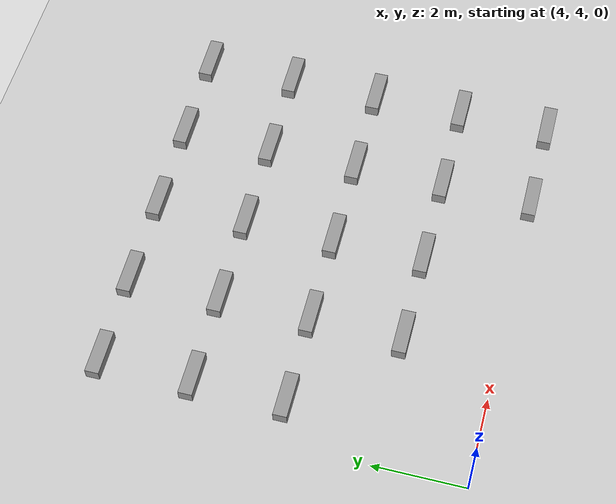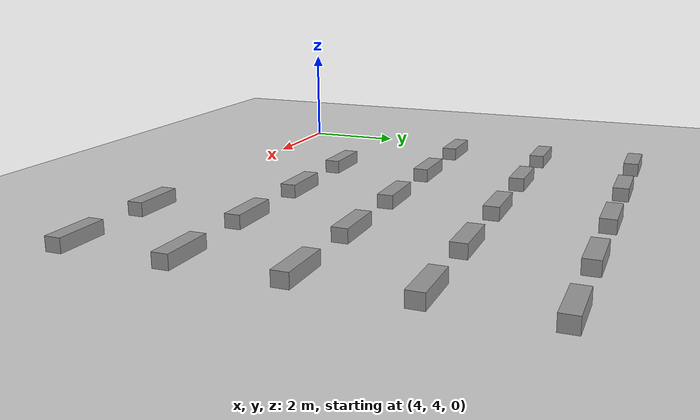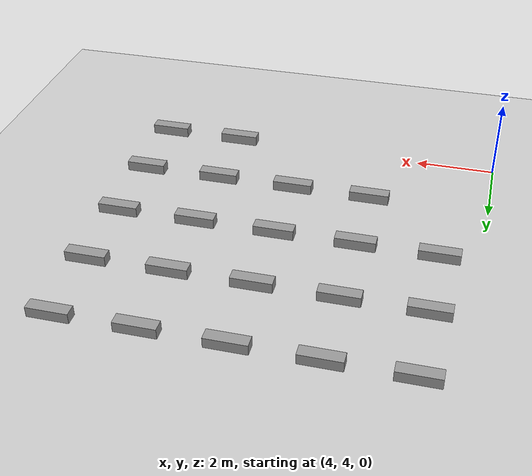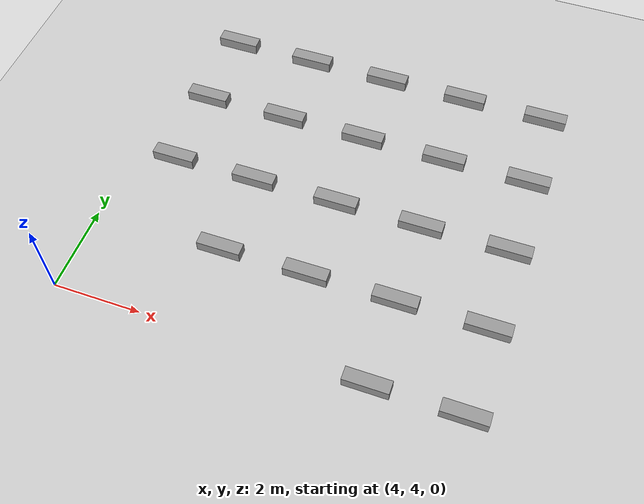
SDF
<sdf version="1.6">
 <world name="default">
  <model name="ground_plane">
   <static>1</static>
   <link name="link">
    <collision name="collision">
     <geometry><plane><normal>0 0 1</normal><size>100 100</size></plane></geometry>
     <surface><friction><ode><mu>100</mu><mu2>50</mu2></ode></friction></surface>
    </collision>
    <visual name="visual">
     <cast_shadows>0</cast_shadows>
     <geometry><plane><normal>0 0 1</normal><size>100 100</size></plane></geometry>
     <material>
      <script><uri>file://media/materials/scripts/gazebo.material</uri><name>Gazebo/Grey</name></script>
     </material>
    </visual>
   </link>
  </model>
  <model name="ss1_0_clone_clone_23">
   <link name="link_0">
    <inertial>
     <mass>1</mass>
     <inertia>
      <ixx>0.166667</ixx>
      <ixy>0</ixy>
      <ixz>0</ixz>
      <iyy>0.166667</iyy>
      <iyz>0</iyz>
      <izz>0.166667</izz>
     </inertia>
    </inertial>
    <visual name="visual">
     <geometry><box><size>0.3 1 0.5</size></box></geometry>
     <material>
      <lighting>1</lighting>
      <script><uri>file://media/materials/scripts/gazebo.material</uri><name>Gazebo/Grey</name></script>
      <ambient>0.3 0.3 0.3 1</ambient>
      <diffuse>0.7 0.7 0.7 1</diffuse>
      <specular>0.01 0.01 0.01 1</specular>
      <emissive>0 0 0 1</emissive>
      <shader type="vertex"><normal_map>__default__</normal_map></shader>
     </material>
    </visual>
    <collision name="collision">
     <geometry><box><size>0.3 1 0.5</size></box></geometry>
     <surface>
      <friction>
       <ode><mu>1</mu><mu2>1</mu2><fdir1>0 0 0</fdir1><slip1>0</slip1><slip2>0</slip2></ode>
       <torsional>
        <coefficient>1</coefficient>
        <patch_radius>0</patch_radius>
        <surface_radius>0</surface_radius>
        <use_patch_radius>1</use_patch_radius>
        <ode><slip>0</slip></ode>
       </torsional>
      </friction>
      <bounce><restitution_coefficient>0</restitution_coefficient><threshold>1e+06</threshold></bounce>
      <contact>
       <collide_without_contact>0</collide_without_contact>
       <collide_without_contact_bitmask>1</collide_without_contact_bitmask>
       <collide_bitmask>1</collide_bitmask>
       <ode>
        <soft_cfm>0</soft_cfm>
        <soft_erp>0.2</soft_erp>
        <kp>1e+13</kp>
        <kd>1</kd>
        <max_vel>0.01</max_vel>
        <min_depth>0</min_depth>
       </ode>
       <bullet>
        <split_impulse>1</split_impulse>
        <split_impulse_penetration_threshold>-0.01</split_impulse_penetration_threshold>
        <soft_cfm>0</soft_cfm>
        <soft_erp>0.2</soft_erp>
        <kp>1e+13</kp>
        <kd>1</kd>
       </bullet>
      </contact>
     </surface>
    </collision>
   </link>
   <static>0</static>
   <pose>5 8 0 0 -0 1.5708</pose>
  </model>
  <model name="ss1_0_clone_clone_24">
   <link name="link_0">
    <inertial>
     <mass>1</mass>
     <inertia>
      <ixx>0.166667</ixx>
      <ixy>0</ixy>
      <ixz>0</ixz>
      <iyy>0.166667</iyy>
      <iyz>0</iyz>
      <izz>0.166667</izz>
     </inertia>
    </inertial>
    <visual name="visual">
     <geometry><box><size>0.3 1 0.5</size></box></geometry>
     <material>
      <lighting>1</lighting>
      <script><uri>file://media/materials/scripts/gazebo.material</uri><name>Gazebo/Grey</name></script>
      <ambient>0.3 0.3 0.3 1</ambient>
      <diffuse>0.7 0.7 0.7 1</diffuse>
      <specular>0.01 0.01 0.01 1</specular>
      <emissive>0 0 0 1</emissive>
      <shader type="vertex"><normal_map>__default__</normal_map></shader>
     </material>
    </visual>
    <collision name="collision">
     <geometry><box><size>0.3 1 0.5</size></box></geometry>
     <surface>
      <friction>
       <ode><mu>1</mu><mu2>1</mu2><fdir1>0 0 0</fdir1><slip1>0</slip1><slip2>0</slip2></ode>
       <torsional>
        <coefficient>1</coefficient>
        <patch_radius>0</patch_radius>
        <surface_radius>0</surface_radius>
        <use_patch_radius>1</use_patch_radius>
        <ode><slip>0</slip></ode>
       </torsional>
      </friction>
      <bounce><restitution_coefficient>0</restitution_coefficient><threshold>1e+06</threshold></bounce>
      <contact>
       <collide_without_contact>0</collide_without_contact>
       <collide_without_contact_bitmask>1</collide_without_contact_bitmask>
       <collide_bitmask>1</collide_bitmask>
       <ode>
        <soft_cfm>0</soft_cfm>
        <soft_erp>0.2</soft_erp>
        <kp>1e+13</kp>
        <kd>1</kd>
        <max_vel>0.01</max_vel>
        <min_depth>0</min_depth>
       </ode>
       <bullet>
        <split_impulse>1</split_impulse>
        <split_impulse_penetration_threshold>-0.01</split_impulse_penetration_threshold>
        <soft_cfm>0</soft_cfm>
        <soft_erp>0.2</soft_erp>
        <kp>1e+13</kp>
        <kd>1</kd>
       </bullet>
      </contact>
     </surface>
    </collision>
   </link>
   <static>0</static>
   <pose>5 10 0 0 -0 1.5708</pose>
  </model>
  <model name="ss1_0_clone_clone_25">
   <link name="link_0">
    <inertial>
     <mass>1</mass>
     <inertia>
      <ixx>0.166667</ixx>
      <ixy>0</ixy>
      <ixz>0</ixz>
      <iyy>0.166667</iyy>
      <iyz>0</iyz>
      <izz>0.166667</izz>
     </inertia>
    </inertial>
    <visual name="visual">
     <geometry><box><size>0.3 1 0.5</size></box></geometry>
     <material>
      <lighting>1</lighting>
      <script><uri>file://media/materials/scripts/gazebo.material</uri><name>Gazebo/Grey</name></script>
      <ambient>0.3 0.3 0.3 1</ambient>
      <diffuse>0.7 0.7 0.7 1</diffuse>
      <specular>0.01 0.01 0.01 1</specular>
      <emissive>0 0 0 1</emissive>
      <shader type="vertex"><normal_map>__default__</normal_map></shader>
     </material>
    </visual>
    <collision name="collision">
     <geometry><box><size>0.3 1 0.5</size></box></geometry>
     <surface>
      <friction>
       <ode><mu>1</mu><mu2>1</mu2><fdir1>0 0 0</fdir1><slip1>0</slip1><slip2>0</slip2></ode>
       <torsional>
        <coefficient>1</coefficient>
        <patch_radius>0</patch_radius>
        <surface_radius>0</surface_radius>
        <use_patch_radius>1</use_patch_radius>
        <ode><slip>0</slip></ode>
       </torsional>
      </friction>
      <bounce><restitution_coefficient>0</restitution_coefficient><threshold>1e+06</threshold></bounce>
      <contact>
       <collide_without_contact>0</collide_without_contact>
       <collide_without_contact_bitmask>1</collide_without_contact_bitmask>
       <collide_bitmask>1</collide_bitmask>
       <ode>
        <soft_cfm>0</soft_cfm>
        <soft_erp>0.2</soft_erp>
        <kp>1e+13</kp>
        <kd>1</kd>
        <max_vel>0.01</max_vel>
        <min_depth>0</min_depth>
       </ode>
       <bullet>
        <split_impulse>1</split_impulse>
        <split_impulse_penetration_threshold>-0.01</split_impulse_penetration_threshold>
        <soft_cfm>0</soft_cfm>
        <soft_erp>0.2</soft_erp>
        <kp>1e+13</kp>
        <kd>1</kd>
       </bullet>
      </contact>
     </surface>
    </collision>
   </link>
   <static>0</static>
   <pose>5 12 0 0 -0 1.5708</pose>
  </model>
  <model name="ss1_0_clone_clone_35">
   <link name="link_0">
    <inertial>
     <mass>1</mass>
     <inertia>
      <ixx>0.166667</ixx>
      <ixy>0</ixy>
      <ixz>0</ixz>
      <iyy>0.166667</iyy>
      <iyz>0</iyz>
      <izz>0.166667</izz>
     </inertia>
    </inertial>
    <visual name="visual">
     <geometry><box><size>0.3 1 0.5</size></box></geometry>
     <material>
      <lighting>1</lighting>
      <script><uri>file://media/materials/scripts/gazebo.material</uri><name>Gazebo/Grey</name></script>
      <ambient>0.3 0.3 0.3 1</ambient>
      <diffuse>0.7 0.7 0.7 1</diffuse>
      <specular>0.01 0.01 0.01 1</specular>
      <emissive>0 0 0 1</emissive>
      <shader type="vertex"><normal_map>__default__</normal_map></shader>
     </material>
    </visual>
    <collision name="collision">
     <geometry><box><size>0.3 1 0.5</size></box></geometry>
     <surface>
      <friction>
       <ode><mu>1</mu><mu2>1</mu2><fdir1>0 0 0</fdir1><slip1>0</slip1><slip2>0</slip2></ode>
       <torsional>
        <coefficient>1</coefficient>
        <patch_radius>0</patch_radius>
        <surface_radius>0</surface_radius>
        <use_patch_radius>1</use_patch_radius>
        <ode><slip>0</slip></ode>
       </torsional>
      </friction>
      <bounce><restitution_coefficient>0</restitution_coefficient><threshold>1e+06</threshold></bounce>
      <contact>
       <collide_without_contact>0</collide_without_contact>
       <collide_without_contact_bitmask>1</collide_without_contact_bitmask>
       <collide_bitmask>1</collide_bitmask>
       <ode>
        <soft_cfm>0</soft_cfm>
        <soft_erp>0.2</soft_erp>
        <kp>1e+13</kp>
        <kd>1</kd>
        <max_vel>0.01</max_vel>
        <min_depth>0</min_depth>
       </ode>
       <bullet>
        <split_impulse>1</split_impulse>
        <split_impulse_penetration_threshold>-0.01</split_impulse_penetration_threshold>
        <soft_cfm>0</soft_cfm>
        <soft_erp>0.2</soft_erp>
        <kp>1e+13</kp>
        <kd>1</kd>
       </bullet>
      </contact>
     </surface>
    </collision>
   </link>
   <static>0</static>
   <pose>11 4 0 0 -0 1.5708</pose>
  </model>
  <model name="ss1_0_clone_clone_36">
   <link name="link_0">
    <inertial>
     <mass>1</mass>
     <inertia>
      <ixx>0.166667</ixx>
      <ixy>0</ixy>
      <ixz>0</ixz>
      <iyy>0.166667</iyy>
      <iyz>0</iyz>
      <izz>0.166667</izz>
     </inertia>
    </inertial>
    <visual name="visual">
     <geometry><box><size>0.3 1 0.5</size></box></geometry>
     <material>
      <lighting>1</lighting>
      <script><uri>file://media/materials/scripts/gazebo.material</uri><name>Gazebo/Grey</name></script>
      <ambient>0.3 0.3 0.3 1</ambient>
      <diffuse>0.7 0.7 0.7 1</diffuse>
      <specular>0.01 0.01 0.01 1</specular>
      <emissive>0 0 0 1</emissive>
      <shader type="vertex"><normal_map>__default__</normal_map></shader>
     </material>
    </visual>
    <collision name="collision">
     <geometry><box><size>0.3 1 0.5</size></box></geometry>
     <surface>
      <friction>
       <ode><mu>1</mu><mu2>1</mu2><fdir1>0 0 0</fdir1><slip1>0</slip1><slip2>0</slip2></ode>
       <torsional>
        <coefficient>1</coefficient>
        <patch_radius>0</patch_radius>
        <surface_radius>0</surface_radius>
        <use_patch_radius>1</use_patch_radius>
        <ode><slip>0</slip></ode>
       </torsional>
      </friction>
      <bounce><restitution_coefficient>0</restitution_coefficient><threshold>1e+06</threshold></bounce>
      <contact>
       <collide_without_contact>0</collide_without_contact>
       <collide_without_contact_bitmask>1</collide_without_contact_bitmask>
       <collide_bitmask>1</collide_bitmask>
       <ode>
        <soft_cfm>0</soft_cfm>
        <soft_erp>0.2</soft_erp>
        <kp>1e+13</kp>
        <kd>1</kd>
        <max_vel>0.01</max_vel>
        <min_depth>0</min_depth>
       </ode>
       <bullet>
        <split_impulse>1</split_impulse>
        <split_impulse_penetration_threshold>-0.01</split_impulse_penetration_threshold>
        <soft_cfm>0</soft_cfm>
        <soft_erp>0.2</soft_erp>
        <kp>1e+13</kp>
        <kd>1</kd>
       </bullet>
      </contact>
     </surface>
    </collision>
   </link>
   <static>0</static>
   <pose>13 4 0 0 -0 1.5708</pose>
  </model>
  <model name="ss1_0_clone_clone_37">
   <link name="link_0">
    <inertial>
     <mass>1</mass>
     <inertia>
      <ixx>0.166667</ixx>
      <ixy>0</ixy>
      <ixz>0</ixz>
      <iyy>0.166667</iyy>
      <iyz>0</iyz>
      <izz>0.166667</izz>
     </inertia>
    </inertial>
    <visual name="visual">
     <geometry><box><size>0.3 1 0.5</size></box></geometry>
     <material>
      <lighting>1</lighting>
      <script><uri>file://media/materials/scripts/gazebo.material</uri><name>Gazebo/Grey</name></script>
      <ambient>0.3 0.3 0.3 1</ambient>
      <diffuse>0.7 0.7 0.7 1</diffuse>
      <specular>0.01 0.01 0.01 1</specular>
      <emissive>0 0 0 1</emissive>
      <shader type="vertex"><normal_map>__default__</normal_map></shader>
     </material>
    </visual>
    <collision name="collision">
     <geometry><box><size>0.3 1 0.5</size></box></geometry>
     <surface>
      <friction>
       <ode><mu>1</mu><mu2>1</mu2><fdir1>0 0 0</fdir1><slip1>0</slip1><slip2>0</slip2></ode>
       <torsional>
        <coefficient>1</coefficient>
        <patch_radius>0</patch_radius>
        <surface_radius>0</surface_radius>
        <use_patch_radius>1</use_patch_radius>
        <ode><slip>0</slip></ode>
       </torsional>
      </friction>
      <bounce><restitution_coefficient>0</restitution_coefficient><threshold>1e+06</threshold></bounce>
      <contact>
       <collide_without_contact>0</collide_without_contact>
       <collide_without_contact_bitmask>1</collide_without_contact_bitmask>
       <collide_bitmask>1</collide_bitmask>
       <ode>
        <soft_cfm>0</soft_cfm>
        <soft_erp>0.2</soft_erp>
        <kp>1e+13</kp>
        <kd>1</kd>
        <max_vel>0.01</max_vel>
        <min_depth>0</min_depth>
       </ode>
       <bullet>
        <split_impulse>1</split_impulse>
        <split_impulse_penetration_threshold>-0.01</split_impulse_penetration_threshold>
        <soft_cfm>0</soft_cfm>
        <soft_erp>0.2</soft_erp>
        <kp>1e+13</kp>
        <kd>1</kd>
       </bullet>
      </contact>
     </surface>
    </collision>
   </link>
   <static>0</static>
   <pose>7 6 0 0 -0 1.5708</pose>
  </model>
  <model name="ss1_0_clone_clone_38">
   <link name="link_0">
    <inertial>
     <mass>1</mass>
     <inertia>
      <ixx>0.166667</ixx>
      <ixy>0</ixy>
      <ixz>0</ixz>
      <iyy>0.166667</iyy>
      <iyz>0</iyz>
      <izz>0.166667</izz>
     </inertia>
    </inertial>
    <visual name="visual">
     <geometry><box><size>0.3 1 0.5</size></box></geometry>
     <material>
      <lighting>1</lighting>
      <script><uri>file://media/materials/scripts/gazebo.material</uri><name>Gazebo/Grey</name></script>
      <ambient>0.3 0.3 0.3 1</ambient>
      <diffuse>0.7 0.7 0.7 1</diffuse>
      <specular>0.01 0.01 0.01 1</specular>
      <emissive>0 0 0 1</emissive>
      <shader type="vertex"><normal_map>__default__</normal_map></shader>
     </material>
    </visual>
    <collision name="collision">
     <geometry><box><size>0.3 1 0.5</size></box></geometry>
     <surface>
      <friction>
       <ode><mu>1</mu><mu2>1</mu2><fdir1>0 0 0</fdir1><slip1>0</slip1><slip2>0</slip2></ode>
       <torsional>
        <coefficient>1</coefficient>
        <patch_radius>0</patch_radius>
        <surface_radius>0</surface_radius>
        <use_patch_radius>1</use_patch_radius>
        <ode><slip>0</slip></ode>
       </torsional>
      </friction>
      <bounce><restitution_coefficient>0</restitution_coefficient><threshold>1e+06</threshold></bounce>
      <contact>
       <collide_without_contact>0</collide_without_contact>
       <collide_without_contact_bitmask>1</collide_without_contact_bitmask>
       <collide_bitmask>1</collide_bitmask>
       <ode>
        <soft_cfm>0</soft_cfm>
        <soft_erp>0.2</soft_erp>
        <kp>1e+13</kp>
        <kd>1</kd>
        <max_vel>0.01</max_vel>
        <min_depth>0</min_depth>
       </ode>
       <bullet>
        <split_impulse>1</split_impulse>
        <split_impulse_penetration_threshold>-0.01</split_impulse_penetration_threshold>
        <soft_cfm>0</soft_cfm>
        <soft_erp>0.2</soft_erp>
        <kp>1e+13</kp>
        <kd>1</kd>
       </bullet>
      </contact>
     </surface>
    </collision>
   </link>
   <static>0</static>
   <pose>9 6 0 0 -0 1.5708</pose>
  </model>
  <model name="ss1_0_clone_clone_39">
   <link name="link_0">
    <inertial>
     <mass>1</mass>
     <inertia>
      <ixx>0.166667</ixx>
      <ixy>0</ixy>
      <ixz>0</ixz>
      <iyy>0.166667</iyy>
      <iyz>0</iyz>
      <izz>0.166667</izz>
     </inertia>
    </inertial>
    <visual name="visual">
     <geometry><box><size>0.3 1 0.5</size></box></geometry>
     <material>
      <lighting>1</lighting>
      <script><uri>file://media/materials/scripts/gazebo.material</uri><name>Gazebo/Grey</name></script>
      <ambient>0.3 0.3 0.3 1</ambient>
      <diffuse>0.7 0.7 0.7 1</diffuse>
      <specular>0.01 0.01 0.01 1</specular>
      <emissive>0 0 0 1</emissive>
      <shader type="vertex"><normal_map>__default__</normal_map></shader>
     </material>
    </visual>
    <collision name="collision">
     <geometry><box><size>0.3 1 0.5</size></box></geometry>
     <surface>
      <friction>
       <ode><mu>1</mu><mu2>1</mu2><fdir1>0 0 0</fdir1><slip1>0</slip1><slip2>0</slip2></ode>
       <torsional>
        <coefficient>1</coefficient>
        <patch_radius>0</patch_radius>
        <surface_radius>0</surface_radius>
        <use_patch_radius>1</use_patch_radius>
        <ode><slip>0</slip></ode>
       </torsional>
      </friction>
      <bounce><restitution_coefficient>0</restitution_coefficient><threshold>1e+06</threshold></bounce>
      <contact>
       <collide_without_contact>0</collide_without_contact>
       <collide_without_contact_bitmask>1</collide_without_contact_bitmask>
       <collide_bitmask>1</collide_bitmask>
       <ode>
        <soft_cfm>0</soft_cfm>
        <soft_erp>0.2</soft_erp>
        <kp>1e+13</kp>
        <kd>1</kd>
        <max_vel>0.01</max_vel>
        <min_depth>0</min_depth>
       </ode>
       <bullet>
        <split_impulse>1</split_impulse>
        <split_impulse_penetration_threshold>-0.01</split_impulse_penetration_threshold>
        <soft_cfm>0</soft_cfm>
        <soft_erp>0.2</soft_erp>
        <kp>1e+13</kp>
        <kd>1</kd>
       </bullet>
      </contact>
     </surface>
    </collision>
   </link>
   <static>0</static>
   <pose>7 8 0 0 -0 1.5708</pose>
  </model>
  <model name="ss1_0_clone_clone_40">
   <link name="link_0">
    <inertial>
     <mass>1</mass>
     <inertia>
      <ixx>0.166667</ixx>
      <ixy>0</ixy>
      <ixz>0</ixz>
      <iyy>0.166667</iyy>
      <iyz>0</iyz>
      <izz>0.166667</izz>
     </inertia>
    </inertial>
    <visual name="visual">
     <geometry><box><size>0.3 1 0.5</size></box></geometry>
     <material>
      <lighting>1</lighting>
      <script><uri>file://media/materials/scripts/gazebo.material</uri><name>Gazebo/Grey</name></script>
      <ambient>0.3 0.3 0.3 1</ambient>
      <diffuse>0.7 0.7 0.7 1</diffuse>
      <specular>0.01 0.01 0.01 1</specular>
      <emissive>0 0 0 1</emissive>
      <shader type="vertex"><normal_map>__default__</normal_map></shader>
     </material>
    </visual>
    <collision name="collision">
     <geometry><box><size>0.3 1 0.5</size></box></geometry>
     <surface>
      <friction>
       <ode><mu>1</mu><mu2>1</mu2><fdir1>0 0 0</fdir1><slip1>0</slip1><slip2>0</slip2></ode>
       <torsional>
        <coefficient>1</coefficient>
        <patch_radius>0</patch_radius>
        <surface_radius>0</surface_radius>
        <use_patch_radius>1</use_patch_radius>
        <ode><slip>0</slip></ode>
       </torsional>
      </friction>
      <bounce><restitution_coefficient>0</restitution_coefficient><threshold>1e+06</threshold></bounce>
      <contact>
       <collide_without_contact>0</collide_without_contact>
       <collide_without_contact_bitmask>1</collide_without_contact_bitmask>
       <collide_bitmask>1</collide_bitmask>
       <ode>
        <soft_cfm>0</soft_cfm>
        <soft_erp>0.2</soft_erp>
        <kp>1e+13</kp>
        <kd>1</kd>
        <max_vel>0.01</max_vel>
        <min_depth>0</min_depth>
       </ode>
       <bullet>
        <split_impulse>1</split_impulse>
        <split_impulse_penetration_threshold>-0.01</split_impulse_penetration_threshold>
        <soft_cfm>0</soft_cfm>
        <soft_erp>0.2</soft_erp>
        <kp>1e+13</kp>
        <kd>1</kd>
       </bullet>
      </contact>
     </surface>
    </collision>
   </link>
   <static>0</static>
   <pose>7 10 0 0 -0 1.5708</pose>
  </model>
  <model name="ss1_0_clone_clone_41">
   <link name="link_0">
    <inertial>
     <mass>1</mass>
     <inertia>
      <ixx>0.166667</ixx>
      <ixy>0</ixy>
      <ixz>0</ixz>
      <iyy>0.166667</iyy>
      <iyz>0</iyz>
      <izz>0.166667</izz>
     </inertia>
    </inertial>
    <visual name="visual">
     <geometry><box><size>0.3 1 0.5</size></box></geometry>
     <material>
      <lighting>1</lighting>
      <script><uri>file://media/materials/scripts/gazebo.material</uri><name>Gazebo/Grey</name></script>
      <ambient>0.3 0.3 0.3 1</ambient>
      <diffuse>0.7 0.7 0.7 1</diffuse>
      <specular>0.01 0.01 0.01 1</specular>
      <emissive>0 0 0 1</emissive>
      <shader type="vertex"><normal_map>__default__</normal_map></shader>
     </material>
    </visual>
    <collision name="collision">
     <geometry><box><size>0.3 1 0.5</size></box></geometry>
     <surface>
      <friction>
       <ode><mu>1</mu><mu2>1</mu2><fdir1>0 0 0</fdir1><slip1>0</slip1><slip2>0</slip2></ode>
       <torsional>
        <coefficient>1</coefficient>
        <patch_radius>0</patch_radius>
        <surface_radius>0</surface_radius>
        <use_patch_radius>1</use_patch_radius>
        <ode><slip>0</slip></ode>
       </torsional>
      </friction>
      <bounce><restitution_coefficient>0</restitution_coefficient><threshold>1e+06</threshold></bounce>
      <contact>
       <collide_without_contact>0</collide_without_contact>
       <collide_without_contact_bitmask>1</collide_without_contact_bitmask>
       <collide_bitmask>1</collide_bitmask>
       <ode>
        <soft_cfm>0</soft_cfm>
        <soft_erp>0.2</soft_erp>
        <kp>1e+13</kp>
        <kd>1</kd>
        <max_vel>0.01</max_vel>
        <min_depth>0</min_depth>
       </ode>
       <bullet>
        <split_impulse>1</split_impulse>
        <split_impulse_penetration_threshold>-0.01</split_impulse_penetration_threshold>
        <soft_cfm>0</soft_cfm>
        <soft_erp>0.2</soft_erp>
        <kp>1e+13</kp>
        <kd>1</kd>
       </bullet>
      </contact>
     </surface>
    </collision>
   </link>
   <static>0</static>
   <pose>7 12 0 0 -0 1.5708</pose>
  </model>
  <model name="ss1_0_clone_clone_42">
   <link name="link_0">
    <inertial>
     <mass>1</mass>
     <inertia>
      <ixx>0.166667</ixx>
      <ixy>0</ixy>
      <ixz>0</ixz>
      <iyy>0.166667</iyy>
      <iyz>0</iyz>
      <izz>0.166667</izz>
     </inertia>
    </inertial>
    <visual name="visual">
     <geometry><box><size>0.3 1 0.5</size></box></geometry>
     <material>
      <lighting>1</lighting>
      <script><uri>file://media/materials/scripts/gazebo.material</uri><name>Gazebo/Grey</name></script>
      <ambient>0.3 0.3 0.3 1</ambient>
      <diffuse>0.7 0.7 0.7 1</diffuse>
      <specular>0.01 0.01 0.01 1</specular>
      <emissive>0 0 0 1</emissive>
      <shader type="vertex"><normal_map>__default__</normal_map></shader>
     </material>
    </visual>
    <collision name="collision">
     <geometry><box><size>0.3 1 0.5</size></box></geometry>
     <surface>
      <friction>
       <ode><mu>1</mu><mu2>1</mu2><fdir1>0 0 0</fdir1><slip1>0</slip1><slip2>0</slip2></ode>
       <torsional>
        <coefficient>1</coefficient>
        <patch_radius>0</patch_radius>
        <surface_radius>0</surface_radius>
        <use_patch_radius>1</use_patch_radius>
        <ode><slip>0</slip></ode>
       </torsional>
      </friction>
      <bounce><restitution_coefficient>0</restitution_coefficient><threshold>1e+06</threshold></bounce>
      <contact>
       <collide_without_contact>0</collide_without_contact>
       <collide_without_contact_bitmask>1</collide_without_contact_bitmask>
       <collide_bitmask>1</collide_bitmask>
       <ode>
        <soft_cfm>0</soft_cfm>
        <soft_erp>0.2</soft_erp>
        <kp>1e+13</kp>
        <kd>1</kd>
        <max_vel>0.01</max_vel>
        <min_depth>0</min_depth>
       </ode>
       <bullet>
        <split_impulse>1</split_impulse>
        <split_impulse_penetration_threshold>-0.01</split_impulse_penetration_threshold>
        <soft_cfm>0</soft_cfm>
        <soft_erp>0.2</soft_erp>
        <kp>1e+13</kp>
        <kd>1</kd>
       </bullet>
      </contact>
     </surface>
    </collision>
   </link>
   <static>0</static>
   <pose>9 10 0 0 -0 1.5708</pose>
  </model>
  <model name="ss1_0_clone_clone_43">
   <link name="link_0">
    <inertial>
     <mass>1</mass>
     <inertia>
      <ixx>0.166667</ixx>
      <ixy>0</ixy>
      <ixz>0</ixz>
      <iyy>0.166667</iyy>
      <iyz>0</iyz>
      <izz>0.166667</izz>
     </inertia>
    </inertial>
    <visual name="visual">
     <geometry><box><size>0.3 1 0.5</size></box></geometry>
     <material>
      <lighting>1</lighting>
      <script><uri>file://media/materials/scripts/gazebo.material</uri><name>Gazebo/Grey</name></script>
      <ambient>0.3 0.3 0.3 1</ambient>
      <diffuse>0.7 0.7 0.7 1</diffuse>
      <specular>0.01 0.01 0.01 1</specular>
      <emissive>0 0 0 1</emissive>
      <shader type="vertex"><normal_map>__default__</normal_map></shader>
     </material>
    </visual>
    <collision name="collision">
     <geometry><box><size>0.3 1 0.5</size></box></geometry>
     <surface>
      <friction>
       <ode><mu>1</mu><mu2>1</mu2><fdir1>0 0 0</fdir1><slip1>0</slip1><slip2>0</slip2></ode>
       <torsional>
        <coefficient>1</coefficient>
        <patch_radius>0</patch_radius>
        <surface_radius>0</surface_radius>
        <use_patch_radius>1</use_patch_radius>
        <ode><slip>0</slip></ode>
       </torsional>
      </friction>
      <bounce><restitution_coefficient>0</restitution_coefficient><threshold>1e+06</threshold></bounce>
      <contact>
       <collide_without_contact>0</collide_without_contact>
       <collide_without_contact_bitmask>1</collide_without_contact_bitmask>
       <collide_bitmask>1</collide_bitmask>
       <ode>
        <soft_cfm>0</soft_cfm>
        <soft_erp>0.2</soft_erp>
        <kp>1e+13</kp>
        <kd>1</kd>
        <max_vel>0.01</max_vel>
        <min_depth>0</min_depth>
       </ode>
       <bullet>
        <split_impulse>1</split_impulse>
        <split_impulse_penetration_threshold>-0.01</split_impulse_penetration_threshold>
        <soft_cfm>0</soft_cfm>
        <soft_erp>0.2</soft_erp>
        <kp>1e+13</kp>
        <kd>1</kd>
       </bullet>
      </contact>
     </surface>
    </collision>
   </link>
   <static>0</static>
   <pose>9 12 0 0 -0 1.5708</pose>
  </model>
  <model name="ss1_0_clone_clone_44">
   <link name="link_0">
    <inertial>
     <mass>1</mass>
     <inertia>
      <ixx>0.166667</ixx>
      <ixy>0</ixy>
      <ixz>0</ixz>
      <iyy>0.166667</iyy>
      <iyz>0</iyz>
      <izz>0.166667</izz>
     </inertia>
    </inertial>
    <visual name="visual">
     <geometry><box><size>0.3 1 0.5</size></box></geometry>
     <material>
      <lighting>1</lighting>
      <script><uri>file://media/materials/scripts/gazebo.material</uri><name>Gazebo/Grey</name></script>
      <ambient>0.3 0.3 0.3 1</ambient>
      <diffuse>0.7 0.7 0.7 1</diffuse>
      <specular>0.01 0.01 0.01 1</specular>
      <emissive>0 0 0 1</emissive>
      <shader type="vertex"><normal_map>__default__</normal_map></shader>
     </material>
    </visual>
    <collision name="collision">
     <geometry><box><size>0.3 1 0.5</size></box></geometry>
     <surface>
      <friction>
       <ode><mu>1</mu><mu2>1</mu2><fdir1>0 0 0</fdir1><slip1>0</slip1><slip2>0</slip2></ode>
       <torsional>
        <coefficient>1</coefficient>
        <patch_radius>0</patch_radius>
        <surface_radius>0</surface_radius>
        <use_patch_radius>1</use_patch_radius>
        <ode><slip>0</slip></ode>
       </torsional>
      </friction>
      <bounce><restitution_coefficient>0</restitution_coefficient><threshold>1e+06</threshold></bounce>
      <contact>
       <collide_without_contact>0</collide_without_contact>
       <collide_without_contact_bitmask>1</collide_without_contact_bitmask>
       <collide_bitmask>1</collide_bitmask>
       <ode>
        <soft_cfm>0</soft_cfm>
        <soft_erp>0.2</soft_erp>
        <kp>1e+13</kp>
        <kd>1</kd>
        <max_vel>0.01</max_vel>
        <min_depth>0</min_depth>
       </ode>
       <bullet>
        <split_impulse>1</split_impulse>
        <split_impulse_penetration_threshold>-0.01</split_impulse_penetration_threshold>
        <soft_cfm>0</soft_cfm>
        <soft_erp>0.2</soft_erp>
        <kp>1e+13</kp>
        <kd>1</kd>
       </bullet>
      </contact>
     </surface>
    </collision>
   </link>
   <static>0</static>
   <pose>9 8 0 0 -0 1.5708</pose>
  </model>
  <model name="ss1_0_clone_clone_45">
   <link name="link_0">
    <inertial>
     <mass>1</mass>
     <inertia>
      <ixx>0.166667</ixx>
      <ixy>0</ixy>
      <ixz>0</ixz>
      <iyy>0.166667</iyy>
      <iyz>0</iyz>
      <izz>0.166667</izz>
     </inertia>
    </inertial>
    <visual name="visual">
     <geometry><box><size>0.3 1 0.5</size></box></geometry>
     <material>
      <lighting>1</lighting>
      <script><uri>file://media/materials/scripts/gazebo.material</uri><name>Gazebo/Grey</name></script>
      <ambient>0.3 0.3 0.3 1</ambient>
      <diffuse>0.7 0.7 0.7 1</diffuse>
      <specular>0.01 0.01 0.01 1</specular>
      <emissive>0 0 0 1</emissive>
      <shader type="vertex"><normal_map>__default__</normal_map></shader>
     </material>
    </visual>
    <collision name="collision">
     <geometry><box><size>0.3 1 0.5</size></box></geometry>
     <surface>
      <friction>
       <ode><mu>1</mu><mu2>1</mu2><fdir1>0 0 0</fdir1><slip1>0</slip1><slip2>0</slip2></ode>
       <torsional>
        <coefficient>1</coefficient>
        <patch_radius>0</patch_radius>
        <surface_radius>0</surface_radius>
        <use_patch_radius>1</use_patch_radius>
        <ode><slip>0</slip></ode>
       </torsional>
      </friction>
      <bounce><restitution_coefficient>0</restitution_coefficient><threshold>1e+06</threshold></bounce>
      <contact>
       <collide_without_contact>0</collide_without_contact>
       <collide_without_contact_bitmask>1</collide_without_contact_bitmask>
       <collide_bitmask>1</collide_bitmask>
       <ode>
        <soft_cfm>0</soft_cfm>
        <soft_erp>0.2</soft_erp>
        <kp>1e+13</kp>
        <kd>1</kd>
        <max_vel>0.01</max_vel>
        <min_depth>0</min_depth>
       </ode>
       <bullet>
        <split_impulse>1</split_impulse>
        <split_impulse_penetration_threshold>-0.01</split_impulse_penetration_threshold>
        <soft_cfm>0</soft_cfm>
        <soft_erp>0.2</soft_erp>
        <kp>1e+13</kp>
        <kd>1</kd>
       </bullet>
      </contact>
     </surface>
    </collision>
   </link>
   <static>0</static>
   <pose>11 6 0 0 -0 1.5708</pose>
  </model>
  <model name="ss1_0_clone_clone_46">
   <link name="link_0">
    <inertial>
     <mass>1</mass>
     <inertia>
      <ixx>0.166667</ixx>
      <ixy>0</ixy>
      <ixz>0</ixz>
      <iyy>0.166667</iyy>
      <iyz>0</iyz>
      <izz>0.166667</izz>
     </inertia>
    </inertial>
    <visual name="visual">
     <geometry><box><size>0.3 1 0.5</size></box></geometry>
     <material>
      <lighting>1</lighting>
      <script><uri>file://media/materials/scripts/gazebo.material</uri><name>Gazebo/Grey</name></script>
      <ambient>0.3 0.3 0.3 1</ambient>
      <diffuse>0.7 0.7 0.7 1</diffuse>
      <specular>0.01 0.01 0.01 1</specular>
      <emissive>0 0 0 1</emissive>
      <shader type="vertex"><normal_map>__default__</normal_map></shader>
     </material>
    </visual>
    <collision name="collision">
     <geometry><box><size>0.3 1 0.5</size></box></geometry>
     <surface>
      <friction>
       <ode><mu>1</mu><mu2>1</mu2><fdir1>0 0 0</fdir1><slip1>0</slip1><slip2>0</slip2></ode>
       <torsional>
        <coefficient>1</coefficient>
        <patch_radius>0</patch_radius>
        <surface_radius>0</surface_radius>
        <use_patch_radius>1</use_patch_radius>
        <ode><slip>0</slip></ode>
       </torsional>
      </friction>
      <bounce><restitution_coefficient>0</restitution_coefficient><threshold>1e+06</threshold></bounce>
      <contact>
       <collide_without_contact>0</collide_without_contact>
       <collide_without_contact_bitmask>1</collide_without_contact_bitmask>
       <collide_bitmask>1</collide_bitmask>
       <ode>
        <soft_cfm>0</soft_cfm>
        <soft_erp>0.2</soft_erp>
        <kp>1e+13</kp>
        <kd>1</kd>
        <max_vel>0.01</max_vel>
        <min_depth>0</min_depth>
       </ode>
       <bullet>
        <split_impulse>1</split_impulse>
        <split_impulse_penetration_threshold>-0.01</split_impulse_penetration_threshold>
        <soft_cfm>0</soft_cfm>
        <soft_erp>0.2</soft_erp>
        <kp>1e+13</kp>
        <kd>1</kd>
       </bullet>
      </contact>
     </surface>
    </collision>
   </link>
   <static>0</static>
   <pose>11 8 0 0 -0 1.5708</pose>
  </model>
  <model name="ss1_0_clone_clone_47">
   <link name="link_0">
    <inertial>
     <mass>1</mass>
     <inertia>
      <ixx>0.166667</ixx>
      <ixy>0</ixy>
      <ixz>0</ixz>
      <iyy>0.166667</iyy>
      <iyz>0</iyz>
      <izz>0.166667</izz>
     </inertia>
    </inertial>
    <visual name="visual">
     <geometry><box><size>0.3 1 0.5</size></box></geometry>
     <material>
      <lighting>1</lighting>
      <script><uri>file://media/materials/scripts/gazebo.material</uri><name>Gazebo/Grey</name></script>
      <ambient>0.3 0.3 0.3 1</ambient>
      <diffuse>0.7 0.7 0.7 1</diffuse>
      <specular>0.01 0.01 0.01 1</specular>
      <emissive>0 0 0 1</emissive>
      <shader type="vertex"><normal_map>__default__</normal_map></shader>
     </material>
    </visual>
    <collision name="collision">
     <geometry><box><size>0.3 1 0.5</size></box></geometry>
     <surface>
      <friction>
       <ode><mu>1</mu><mu2>1</mu2><fdir1>0 0 0</fdir1><slip1>0</slip1><slip2>0</slip2></ode>
       <torsional>
        <coefficient>1</coefficient>
        <patch_radius>0</patch_radius>
        <surface_radius>0</surface_radius>
        <use_patch_radius>1</use_patch_radius>
        <ode><slip>0</slip></ode>
       </torsional>
      </friction>
      <bounce><restitution_coefficient>0</restitution_coefficient><threshold>1e+06</threshold></bounce>
      <contact>
       <collide_without_contact>0</collide_without_contact>
       <collide_without_contact_bitmask>1</collide_without_contact_bitmask>
       <collide_bitmask>1</collide_bitmask>
       <ode>
        <soft_cfm>0</soft_cfm>
        <soft_erp>0.2</soft_erp>
        <kp>1e+13</kp>
        <kd>1</kd>
        <max_vel>0.01</max_vel>
        <min_depth>0</min_depth>
       </ode>
       <bullet>
        <split_impulse>1</split_impulse>
        <split_impulse_penetration_threshold>-0.01</split_impulse_penetration_threshold>
        <soft_cfm>0</soft_cfm>
        <soft_erp>0.2</soft_erp>
        <kp>1e+13</kp>
        <kd>1</kd>
       </bullet>
      </contact>
     </surface>
    </collision>
   </link>
   <static>0</static>
   <pose>11 10 0 0 -0 1.5708</pose>
  </model>
  <model name="ss1_0_clone_clone_48">
   <link name="link_0">
    <inertial>
     <mass>1</mass>
     <inertia>
      <ixx>0.166667</ixx>
      <ixy>0</ixy>
      <ixz>0</ixz>
      <iyy>0.166667</iyy>
      <iyz>0</iyz>
      <izz>0.166667</izz>
     </inertia>
    </inertial>
    <visual name="visual">
     <geometry><box><size>0.3 1 0.5</size></box></geometry>
     <material>
      <lighting>1</lighting>
      <script><uri>file://media/materials/scripts/gazebo.material</uri><name>Gazebo/Grey</name></script>
      <ambient>0.3 0.3 0.3 1</ambient>
      <diffuse>0.7 0.7 0.7 1</diffuse>
      <specular>0.01 0.01 0.01 1</specular>
      <emissive>0 0 0 1</emissive>
      <shader type="vertex"><normal_map>__default__</normal_map></shader>
     </material>
    </visual>
    <collision name="collision">
     <geometry><box><size>0.3 1 0.5</size></box></geometry>
     <surface>
      <friction>
       <ode><mu>1</mu><mu2>1</mu2><fdir1>0 0 0</fdir1><slip1>0</slip1><slip2>0</slip2></ode>
       <torsional>
        <coefficient>1</coefficient>
        <patch_radius>0</patch_radius>
        <surface_radius>0</surface_radius>
        <use_patch_radius>1</use_patch_radius>
        <ode><slip>0</slip></ode>
       </torsional>
      </friction>
      <bounce><restitution_coefficient>0</restitution_coefficient><threshold>1e+06</threshold></bounce>
      <contact>
       <collide_without_contact>0</collide_without_contact>
       <collide_without_contact_bitmask>1</collide_without_contact_bitmask>
       <collide_bitmask>1</collide_bitmask>
       <ode>
        <soft_cfm>0</soft_cfm>
        <soft_erp>0.2</soft_erp>
        <kp>1e+13</kp>
        <kd>1</kd>
        <max_vel>0.01</max_vel>
        <min_depth>0</min_depth>
       </ode>
       <bullet>
        <split_impulse>1</split_impulse>
        <split_impulse_penetration_threshold>-0.01</split_impulse_penetration_threshold>
        <soft_cfm>0</soft_cfm>
        <soft_erp>0.2</soft_erp>
        <kp>1e+13</kp>
        <kd>1</kd>
       </bullet>
      </contact>
     </surface>
    </collision>
   </link>
   <static>0</static>
   <pose>11 12 0 0 -0 1.5708</pose>
  </model>
  <model name="ss1_0_clone_clone_49">
   <link name="link_0">
    <inertial>
     <mass>1</mass>
     <inertia>
      <ixx>0.166667</ixx>
      <ixy>0</ixy>
      <ixz>0</ixz>
      <iyy>0.166667</iyy>
      <iyz>0</iyz>
      <izz>0.166667</izz>
     </inertia>
    </inertial>
    <visual name="visual">
     <geometry><box><size>0.3 1 0.5</size></box></geometry>
     <material>
      <lighting>1</lighting>
      <script><uri>file://media/materials/scripts/gazebo.material</uri><name>Gazebo/Grey</name></script>
      <ambient>0.3 0.3 0.3 1</ambient>
      <diffuse>0.7 0.7 0.7 1</diffuse>
      <specular>0.01 0.01 0.01 1</specular>
      <emissive>0 0 0 1</emissive>
      <shader type="vertex"><normal_map>__default__</normal_map></shader>
     </material>
    </visual>
    <collision name="collision">
     <geometry><box><size>0.3 1 0.5</size></box></geometry>
     <surface>
      <friction>
       <ode><mu>1</mu><mu2>1</mu2><fdir1>0 0 0</fdir1><slip1>0</slip1><slip2>0</slip2></ode>
       <torsional>
        <coefficient>1</coefficient>
        <patch_radius>0</patch_radius>
        <surface_radius>0</surface_radius>
        <use_patch_radius>1</use_patch_radius>
        <ode><slip>0</slip></ode>
       </torsional>
      </friction>
      <bounce><restitution_coefficient>0</restitution_coefficient><threshold>1e+06</threshold></bounce>
      <contact>
       <collide_without_contact>0</collide_without_contact>
       <collide_without_contact_bitmask>1</collide_without_contact_bitmask>
       <collide_bitmask>1</collide_bitmask>
       <ode>
        <soft_cfm>0</soft_cfm>
        <soft_erp>0.2</soft_erp>
        <kp>1e+13</kp>
        <kd>1</kd>
        <max_vel>0.01</max_vel>
        <min_depth>0</min_depth>
       </ode>
       <bullet>
        <split_impulse>1</split_impulse>
        <split_impulse_penetration_threshold>-0.01</split_impulse_penetration_threshold>
        <soft_cfm>0</soft_cfm>
        <soft_erp>0.2</soft_erp>
        <kp>1e+13</kp>
        <kd>1</kd>
       </bullet>
      </contact>
     </surface>
    </collision>
   </link>
   <static>0</static>
   <pose>13 6 0 0 -0 1.5708</pose>
  </model>
  <model name="ss1_0_clone_clone_50">
   <link name="link_0">
    <inertial>
     <mass>1</mass>
     <inertia>
      <ixx>0.166667</ixx>
      <ixy>0</ixy>
      <ixz>0</ixz>
      <iyy>0.166667</iyy>
      <iyz>0</iyz>
      <izz>0.166667</izz>
     </inertia>
    </inertial>
    <visual name="visual">
     <geometry><box><size>0.3 1 0.5</size></box></geometry>
     <material>
      <lighting>1</lighting>
      <script><uri>file://media/materials/scripts/gazebo.material</uri><name>Gazebo/Grey</name></script>
      <ambient>0.3 0.3 0.3 1</ambient>
      <diffuse>0.7 0.7 0.7 1</diffuse>
      <specular>0.01 0.01 0.01 1</specular>
      <emissive>0 0 0 1</emissive>
      <shader type="vertex"><normal_map>__default__</normal_map></shader>
     </material>
    </visual>
    <collision name="collision">
     <geometry><box><size>0.3 1 0.5</size></box></geometry>
     <surface>
      <friction>
       <ode><mu>1</mu><mu2>1</mu2><fdir1>0 0 0</fdir1><slip1>0</slip1><slip2>0</slip2></ode>
       <torsional>
        <coefficient>1</coefficient>
        <patch_radius>0</patch_radius>
        <surface_radius>0</surface_radius>
        <use_patch_radius>1</use_patch_radius>
        <ode><slip>0</slip></ode>
       </torsional>
      </friction>
      <bounce><restitution_coefficient>0</restitution_coefficient><threshold>1e+06</threshold></bounce>
      <contact>
       <collide_without_contact>0</collide_without_contact>
       <collide_without_contact_bitmask>1</collide_without_contact_bitmask>
       <collide_bitmask>1</collide_bitmask>
       <ode>
        <soft_cfm>0</soft_cfm>
        <soft_erp>0.2</soft_erp>
        <kp>1e+13</kp>
        <kd>1</kd>
        <max_vel>0.01</max_vel>
        <min_depth>0</min_depth>
       </ode>
       <bullet>
        <split_impulse>1</split_impulse>
        <split_impulse_penetration_threshold>-0.01</split_impulse_penetration_threshold>
        <soft_cfm>0</soft_cfm>
        <soft_erp>0.2</soft_erp>
        <kp>1e+13</kp>
        <kd>1</kd>
       </bullet>
      </contact>
     </surface>
    </collision>
   </link>
   <static>0</static>
   <pose>13 8 0 0 -0 1.5708</pose>
  </model>
  <model name="ss1_0_clone_clone_51">
   <link name="link_0">
    <inertial>
     <mass>1</mass>
     <inertia>
      <ixx>0.166667</ixx>
      <ixy>0</ixy>
      <ixz>0</ixz>
      <iyy>0.166667</iyy>
      <iyz>0</iyz>
      <izz>0.166667</izz>
     </inertia>
    </inertial>
    <visual name="visual">
     <geometry><box><size>0.3 1 0.5</size></box></geometry>
     <material>
      <lighting>1</lighting>
      <script><uri>file://media/materials/scripts/gazebo.material</uri><name>Gazebo/Grey</name></script>
      <ambient>0.3 0.3 0.3 1</ambient>
      <diffuse>0.7 0.7 0.7 1</diffuse>
      <specular>0.01 0.01 0.01 1</specular>
      <emissive>0 0 0 1</emissive>
      <shader type="vertex"><normal_map>__default__</normal_map></shader>
     </material>
    </visual>
    <collision name="collision">
     <geometry><box><size>0.3 1 0.5</size></box></geometry>
     <surface>
      <friction>
       <ode><mu>1</mu><mu2>1</mu2><fdir1>0 0 0</fdir1><slip1>0</slip1><slip2>0</slip2></ode>
       <torsional>
        <coefficient>1</coefficient>
        <patch_radius>0</patch_radius>
        <surface_radius>0</surface_radius>
        <use_patch_radius>1</use_patch_radius>
        <ode><slip>0</slip></ode>
       </torsional>
      </friction>
      <bounce><restitution_coefficient>0</restitution_coefficient><threshold>1e+06</threshold></bounce>
      <contact>
       <collide_without_contact>0</collide_without_contact>
       <collide_without_contact_bitmask>1</collide_without_contact_bitmask>
       <collide_bitmask>1</collide_bitmask>
       <ode>
        <soft_cfm>0</soft_cfm>
        <soft_erp>0.2</soft_erp>
        <kp>1e+13</kp>
        <kd>1</kd>
        <max_vel>0.01</max_vel>
        <min_depth>0</min_depth>
       </ode>
       <bullet>
        <split_impulse>1</split_impulse>
        <split_impulse_penetration_threshold>-0.01</split_impulse_penetration_threshold>
        <soft_cfm>0</soft_cfm>
        <soft_erp>0.2</soft_erp>
        <kp>1e+13</kp>
        <kd>1</kd>
       </bullet>
      </contact>
     </surface>
    </collision>
   </link>
   <static>0</static>
   <pose>13 10 0 0 -0 1.5708</pose>
  </model>
  <model name="ss1_0_clone_clone_52">
   <link name="link_0">
    <inertial>
     <mass>1</mass>
     <inertia>
      <ixx>0.166667</ixx>
      <ixy>0</ixy>
      <ixz>0</ixz>
      <iyy>0.166667</iyy>
      <iyz>0</iyz>
      <izz>0.166667</izz>
     </inertia>
    </inertial>
    <visual name="visual">
     <geometry><box><size>0.3 1 0.5</size></box></geometry>
     <material>
      <lighting>1</lighting>
      <script><uri>file://media/materials/scripts/gazebo.material</uri><name>Gazebo/Grey</name></script>
      <ambient>0.3 0.3 0.3 1</ambient>
      <diffuse>0.7 0.7 0.7 1</diffuse>
      <specular>0.01 0.01 0.01 1</specular>
      <emissive>0 0 0 1</emissive>
      <shader type="vertex"><normal_map>__default__</normal_map></shader>
     </material>
    </visual>
    <collision name="collision">
     <geometry><box><size>0.3 1 0.5</size></box></geometry>
     <surface>
      <friction>
       <ode><mu>1</mu><mu2>1</mu2><fdir1>0 0 0</fdir1><slip1>0</slip1><slip2>0</slip2></ode>
       <torsional>
        <coefficient>1</coefficient>
        <patch_radius>0</patch_radius>
        <surface_radius>0</surface_radius>
        <use_patch_radius>1</use_patch_radius>
        <ode><slip>0</slip></ode>
       </torsional>
      </friction>
      <bounce><restitution_coefficient>0</restitution_coefficient><threshold>1e+06</threshold></bounce>
      <contact>
       <collide_without_contact>0</collide_without_contact>
       <collide_without_contact_bitmask>1</collide_without_contact_bitmask>
       <collide_bitmask>1</collide_bitmask>
       <ode>
        <soft_cfm>0</soft_cfm>
        <soft_erp>0.2</soft_erp>
        <kp>1e+13</kp>
        <kd>1</kd>
        <max_vel>0.01</max_vel>
        <min_depth>0</min_depth>
       </ode>
       <bullet>
        <split_impulse>1</split_impulse>
        <split_impulse_penetration_threshold>-0.01</split_impulse_penetration_threshold>
        <soft_cfm>0</soft_cfm>
        <soft_erp>0.2</soft_erp>
        <kp>1e+13</kp>
        <kd>1</kd>
       </bullet>
      </contact>
     </surface>
    </collision>
   </link>
   <static>0</static>
   <pose>13 12 0 0 -0 1.5708</pose>
  </model>
 </world>
</sdf>
